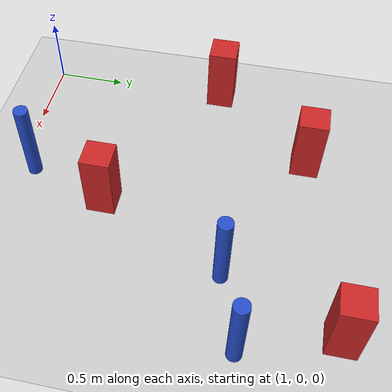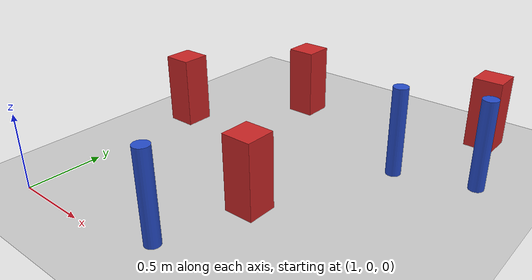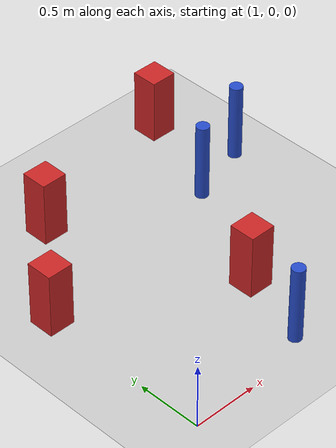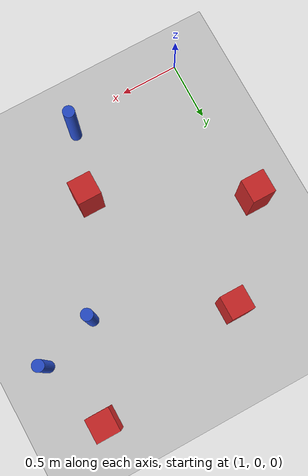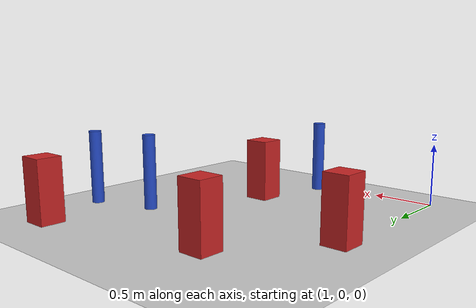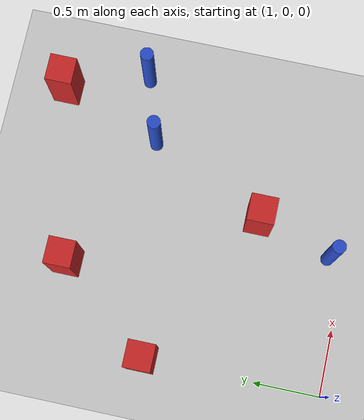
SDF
<sdf version="1.6">
 <world name="default">
  <model name="ground_plane">
   <static>1</static>
   <link name="link">
    <collision name="collision">
     <geometry><plane><normal>0 0 1</normal><size>100 100</size></plane></geometry>
     <surface><friction><ode><mu>100</mu><mu2>50</mu2></ode></friction></surface>
    </collision>
    <visual name="visual">
     <cast_shadows>0</cast_shadows>
     <geometry><plane><normal>0 0 1</normal><size>100 100</size></plane></geometry>
     <material>
      <ambient>1.0 1.0 1.0 1.0</ambient>
      <diffuse>0.8 0.8 0.8 1.0</diffuse>
      <specular>0.01 0.01 0.01 1.000000</specular>
     </material>
    </visual>
   </link>
  </model>
  <model name="pole_obstacle44">
   <static>true</static>
   <pose>2.02675476743 0.130925914596 7.38925637345e-09 -8.471706928e-08 1.2497676515e-08 -1.74513093013e-07</pose>
   <link name="link">
    <pose>0 0 0.3 0 -0 0</pose>
    <inertial>
     <mass>1</mass>
     <inertia><ixx>0.145833</ixx><ixy>0</ixy><ixz>0</ixz><iyy>0.145833</iyy><iyz>0</iyz><izz>0.125</izz></inertia>
    </inertial>
    <collision name="collision">
     <geometry><cylinder><radius>0.05</radius><length>.6</length></cylinder></geometry>
    </collision>
    <visual name="visual">
     <geometry><cylinder><radius>0.05</radius><length>.6</length></cylinder></geometry>
     <material>
      <script><name>Gazebo/Blue</name><uri>file://media/materials/scripts/gazebo.material</uri></script>
     </material>
    </visual>
   </link>
  </model>
  <model name="square_post_obstacle51">
   <static>true</static>
   <pose>1.59730750345 2.04922102669 1.91545236811e-07 -7.35059704564e-06 1.12565212e-07 2.39332434364e-05</pose>
   <link name="link">
    <pose>0 0 0.25 0 -0 0</pose>
    <inertial>
     <mass>100</mass>
     <inertia>
      <ixx>0.166667</ixx>
      <ixy>0</ixy>
      <ixz>0</ixz>
      <iyy>0.166667</iyy>
      <iyz>0</iyz>
      <izz>0.166667</izz>
     </inertia>
    </inertial>
    <collision name="collision"><geometry><box><size>.2 .2 .5</size></box></geometry></collision>
    <visual name="visual">
     <geometry><box><size>.2 .2 .5</size></box></geometry>
     <material>
      <script><name>Gazebo/Red</name><uri>file://media/materials/scripts/gazebo.material</uri></script>
     </material>
    </visual>
   </link>
  </model>
  <model name="square_post_obstacle52">
   <static>true</static>
   <pose>1.00465909613 1.33921879013 1.91545236811e-07 -7.35059704564e-06 1.12565212e-07 2.39332434364e-05</pose>
   <link name="link">
    <pose>0 0 0.25 0 -0 0</pose>
    <inertial>
     <mass>100</mass>
     <inertia>
      <ixx>0.166667</ixx>
      <ixy>0</ixy>
      <ixz>0</ixz>
      <iyy>0.166667</iyy>
      <iyz>0</iyz>
      <izz>0.166667</izz>
     </inertia>
    </inertial>
    <collision name="collision"><geometry><box><size>.2 .2 .5</size></box></geometry></collision>
    <visual name="visual">
     <geometry><box><size>.2 .2 .5</size></box></geometry>
     <material>
      <script><name>Gazebo/Red</name><uri>file://media/materials/scripts/gazebo.material</uri></script>
     </material>
    </visual>
   </link>
  </model>
  <model name="square_post_obstacle114">
   <static>true</static>
   <pose>2.9229751349 2.36016339598 1.91545236811e-07 -7.35059704564e-06 1.12565212e-07 2.39332434364e-05</pose>
   <link name="link">
    <pose>0 0 0.25 0 -0 0</pose>
    <inertial>
     <mass>100</mass>
     <inertia>
      <ixx>0.166667</ixx>
      <ixy>0</ixy>
      <ixz>0</ixz>
      <iyy>0.166667</iyy>
      <iyz>0</iyz>
      <izz>0.166667</izz>
     </inertia>
    </inertial>
    <collision name="collision"><geometry><box><size>.2 .2 .5</size></box></geometry></collision>
    <visual name="visual">
     <geometry><box><size>.2 .2 .5</size></box></geometry>
     <material>
      <script><name>Gazebo/Red</name><uri>file://media/materials/scripts/gazebo.material</uri></script>
     </material>
    </visual>
   </link>
  </model>
  <model name="square_post_obstacle124">
   <static>true</static>
   <pose>2.20223118545 0.701143997711 1.91545236811e-07 -7.35059704564e-06 1.12565212e-07 2.39332434364e-05</pose>
   <link name="link">
    <pose>0 0 0.25 0 -0 0</pose>
    <inertial>
     <mass>100</mass>
     <inertia>
      <ixx>0.166667</ixx>
      <ixy>0</ixy>
      <ixz>0</ixz>
      <iyy>0.166667</iyy>
      <iyz>0</iyz>
      <izz>0.166667</izz>
     </inertia>
    </inertial>
    <collision name="collision"><geometry><box><size>.2 .2 .5</size></box></geometry></collision>
    <visual name="visual">
     <geometry><box><size>.2 .2 .5</size></box></geometry>
     <material>
      <script><name>Gazebo/Red</name><uri>file://media/materials/scripts/gazebo.material</uri></script>
     </material>
    </visual>
   </link>
  </model>
  <model name="pole_obstacle163">
   <static>true</static>
   <pose>3.12862863542 1.75219059805 7.38925637345e-09 -8.471706928e-08 1.24976765152e-08 -1.74513093012e-07</pose>
   <link name="link">
    <pose>0 0 0.3 0 -0 0</pose>
    <inertial>
     <mass>1</mass>
     <inertia><ixx>0.145833</ixx><ixy>0</ixy><ixz>0</ixz><iyy>0.145833</iyy><iyz>0</iyz><izz>0.125</izz></inertia>
    </inertial>
    <collision name="collision">
     <geometry><cylinder><radius>0.05</radius><length>.6</length></cylinder></geometry>
    </collision>
    <visual name="visual">
     <geometry><cylinder><radius>0.05</radius><length>.6</length></cylinder></geometry>
     <material>
      <script><name>Gazebo/Blue</name><uri>file://media/materials/scripts/gazebo.material</uri></script>
     </material>
    </visual>
   </link>
  </model>
  <model name="pole_obstacle238">
   <static>true</static>
   <pose>2.63874000957 1.59302002078 7.38925637345e-09 -8.47170692796e-08 1.24976764713e-08 -1.74513093037e-07</pose>
   <link name="link">
    <pose>0 0 0.3 0 -0 0</pose>
    <inertial>
     <mass>1</mass>
     <inertia><ixx>0.145833</ixx><ixy>0</ixy><ixz>0</ixz><iyy>0.145833</iyy><iyz>0</iyz><izz>0.125</izz></inertia>
    </inertial>
    <collision name="collision">
     <geometry><cylinder><radius>0.05</radius><length>.6</length></cylinder></geometry>
    </collision>
    <visual name="visual">
     <geometry><cylinder><radius>0.05</radius><length>.6</length></cylinder></geometry>
     <material>
      <script><name>Gazebo/Blue</name><uri>file://media/materials/scripts/gazebo.material</uri></script>
     </material>
    </visual>
   </link>
  </model>
 </world>
</sdf>
